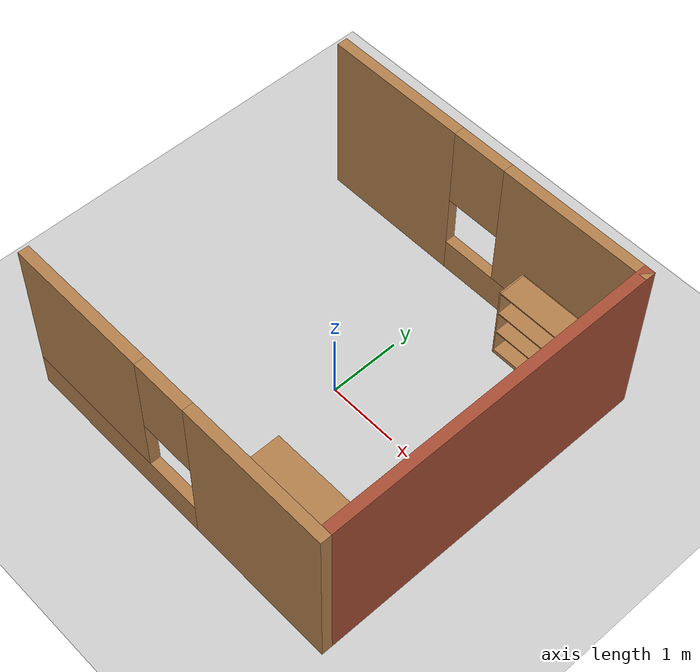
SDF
<sdf version="1.6">
 <world name="default">
  <light name="sun" type="directional">
   <pose>0 0 10 0 -0 0</pose>
   <diffuse>0.8 0.8 0.8 1</diffuse>
   <specular>0.2 0.2 0.2 1</specular>
   <attenuation>
    <range>1000</range>
    <constant>0.9</constant>
    <linear>0.01</linear>
    <quadratic>0.001</quadratic>
   </attenuation>
   <direction>-0.5 0.1 -0.9</direction>
  </light>
  <model name="ground_plane">
   <static>1</static>
   <link name="link">
    <collision name="collision">
     <geometry><plane><normal>0 0 1</normal><size>100 100</size></plane></geometry>
     <surface>
      <contact><collide_bitmask>65535</collide_bitmask></contact>
      <friction><ode><mu>100</mu><mu2>50</mu2></ode></friction>
     </surface>
    </collision>
    <visual name="visual">
     <cast_shadows>0</cast_shadows>
     <geometry><plane><normal>0 0 1</normal><size>100 100</size></plane></geometry>
     <material>
      <script><uri>file://media/materials/scripts/gazebo.material</uri><name>Gazebo/Grey</name></script>
     </material>
    </visual>
   </link>
  </model>
  <gravity>0 0 -9.8</gravity>
  <magnetic_field>6e-06 2.3e-05 -4.2e-05</magnetic_field>
  <atmosphere type="adiabatic"/>
  <physics name="default_physics" default="0" type="ode">
   <max_step_size>0.001</max_step_size>
   <real_time_factor>1</real_time_factor>
   <real_time_update_rate>1000</real_time_update_rate>
  </physics>
  <scene><ambient>0.4 0.4 0.4 1</ambient><background>0.7 0.7 0.7 1</background><shadows>1</shadows></scene>
  <spherical_coordinates>
   <surface_model>EARTH_WGS84</surface_model>
   <latitude_deg>0</latitude_deg>
   <longitude_deg>0</longitude_deg>
   <elevation>0</elevation>
   <heading_deg>0</heading_deg>
  </spherical_coordinates>
  <model name="house_1">
   <pose>0 0 0 0 -0 4e-06</pose>
   <link name="Wall_0">
    <pose>-0 2.425 0 0 -0 0</pose>
    <visual name="Wall_0_Visual_0">
     <pose>-1.48526 0 1.25 0 -0 0</pose>
     <geometry><box><size>2.02948 0.15 2.5</size></box></geometry>
     <material>
      <script><uri>file://media/materials/scripts/gazebo.material</uri><name>Gazebo/Wood</name></script>
      <ambient>1 1 1 1</ambient>
     </material>
     <meta><layer>0</layer></meta>
    </visual>
    <collision name="Wall_0_Collision_0">
     <geometry><box><size>2.02948 0.15 2.5</size></box></geometry>
     <pose>-1.48526 0 1.25 0 -0 0</pose>
    </collision>
    <visual name="Wall_0_Visual_1">
     <pose>1.01474 0 0.25 0 -0 0</pose>
     <geometry><box><size>2.97052 0.15 0.5</size></box></geometry>
     <material>
      <script><uri>file://media/materials/scripts/gazebo.material</uri><name>Gazebo/Wood</name></script>
      <ambient>1 1 1 1</ambient>
     </material>
     <meta><layer>0</layer></meta>
    </visual>
    <collision name="Wall_0_Collision_1">
     <geometry><box><size>2.97052 0.15 0.5</size></box></geometry>
     <pose>1.01474 0 0.25 0 -0 0</pose>
    </collision>
    <visual name="Wall_0_Visual_2">
     <pose>1.41474 0 1.5 0 -0 0</pose>
     <geometry><box><size>2.17053 0.15 2</size></box></geometry>
     <material>
      <script><uri>file://media/materials/scripts/gazebo.material</uri><name>Gazebo/Wood</name></script>
      <ambient>1 1 1 1</ambient>
     </material>
     <meta><layer>0</layer></meta>
    </visual>
    <collision name="Wall_0_Collision_2">
     <geometry><box><size>2.17053 0.15 2</size></box></geometry>
     <pose>1.41474 0 1.5 0 -0 0</pose>
    </collision>
    <visual name="Wall_0_Visual_3">
     <pose>-0.070525 0 1.9 0 -0 0</pose>
     <geometry><box><size>0.8 0.15 1.2</size></box></geometry>
     <material>
      <script><uri>file://media/materials/scripts/gazebo.material</uri><name>Gazebo/Wood</name></script>
      <ambient>1 1 1 1</ambient>
     </material>
     <meta><layer>0</layer></meta>
    </visual>
    <collision name="Wall_0_Collision_3">
     <geometry><box><size>0.8 0.15 1.2</size></box></geometry>
     <pose>-0.070525 0 1.9 0 -0 0</pose>
    </collision>
   </link>
   <link name="Wall_1">
    <collision name="Wall_1_Collision">
     <geometry><box><size>5 0.15 2.5</size></box></geometry>
     <pose>0 0 1.25 0 -0 0</pose>
    </collision>
    <visual name="Wall_1_Visual">
     <pose>0 0 1.25 0 -0 0</pose>
     <geometry><box><size>5 0.15 2.5</size></box></geometry>
     <material>
      <script><uri>file://media/materials/scripts/gazebo.material</uri><name>Gazebo/Bricks</name></script>
      <ambient>1 1 1 1</ambient>
     </material>
     <meta><layer>0</layer></meta>
    </visual>
    <pose>2.425 -0 0 0 -0 -1.5708</pose>
   </link>
   <link name="Wall_2">
    <pose>-0 -2.425 0 0 -0 3.14159</pose>
    <visual name="Wall_2_Visual_0">
     <pose>-1.43223 0 1.25 0 -0 0</pose>
     <geometry><box><size>2.13555 0.15 2.5</size></box></geometry>
     <material>
      <script><uri>file://media/materials/scripts/gazebo.material</uri><name>Gazebo/Wood</name></script>
      <ambient>1 1 1 1</ambient>
     </material>
     <meta><layer>0</layer></meta>
    </visual>
    <collision name="Wall_2_Collision_0">
     <geometry><box><size>2.13555 0.15 2.5</size></box></geometry>
     <pose>-1.43223 0 1.25 0 -0 0</pose>
    </collision>
    <visual name="Wall_2_Visual_1">
     <pose>1.06777 0 0.25 0 -0 0</pose>
     <geometry><box><size>2.86445 0.15 0.5</size></box></geometry>
     <material>
      <script><uri>file://media/materials/scripts/gazebo.material</uri><name>Gazebo/Wood</name></script>
      <ambient>1 1 1 1</ambient>
     </material>
     <meta><layer>0</layer></meta>
    </visual>
    <collision name="Wall_2_Collision_1">
     <geometry><box><size>2.86445 0.15 0.5</size></box></geometry>
     <pose>1.06777 0 0.25 0 -0 0</pose>
    </collision>
    <visual name="Wall_2_Visual_2">
     <pose>1.46777 0 1.5 0 -0 0</pose>
     <geometry><box><size>2.06446 0.15 2</size></box></geometry>
     <material>
      <script><uri>file://media/materials/scripts/gazebo.material</uri><name>Gazebo/Wood</name></script>
      <ambient>1 1 1 1</ambient>
     </material>
     <meta><layer>0</layer></meta>
    </visual>
    <collision name="Wall_2_Collision_2">
     <geometry><box><size>2.06446 0.15 2</size></box></geometry>
     <pose>1.46777 0 1.5 0 -0 0</pose>
    </collision>
    <visual name="Wall_2_Visual_3">
     <pose>0.035545 0 1.9 0 -0 0</pose>
     <geometry><box><size>0.8 0.15 1.2</size></box></geometry>
     <material>
      <script><uri>file://media/materials/scripts/gazebo.material</uri><name>Gazebo/Wood</name></script>
      <ambient>1 1 1 1</ambient>
     </material>
     <meta><layer>0</layer></meta>
    </visual>
    <collision name="Wall_2_Collision_3">
     <geometry><box><size>0.8 0.15 1.2</size></box></geometry>
     <pose>0.035545 0 1.9 0 -0 0</pose>
    </collision>
   </link>
   <static>1</static>
  </model>
  <model name="table">
   <static>1</static>
   <link name="link">
    <collision name="surface">
     <pose>0 0 1 0 -0 0</pose>
     <geometry><box><size>1.5 0.8 0.03</size></box></geometry>
     <surface><friction><ode><mu>0.6</mu><mu2>0.6</mu2></ode></friction></surface>
    </collision>
    <visual name="visual1">
     <pose>0 0 1 0 -0 0</pose>
     <geometry><box><size>1.5 0.8 0.03</size></box></geometry>
     <material>
      <script><uri>file://media/materials/scripts/gazebo.material</uri><name>Gazebo/Wood</name></script>
     </material>
    </visual>
    <collision name="front_left_leg">
     <pose>0.68 0.38 0.5 0 -0 0</pose>
     <geometry><cylinder><radius>0.02</radius><length>1</length></cylinder></geometry>
    </collision>
    <visual name="front_left_leg">
     <pose>0.68 0.38 0.5 0 -0 0</pose>
     <geometry><cylinder><radius>0.02</radius><length>1</length></cylinder></geometry>
     <material>
      <script><uri>file://media/materials/scripts/gazebo.material</uri><name>Gazebo/Grey</name></script>
     </material>
    </visual>
    <collision name="front_right_leg">
     <pose>0.68 -0.38 0.5 0 -0 0</pose>
     <geometry><cylinder><radius>0.02</radius><length>1</length></cylinder></geometry>
    </collision>
    <visual name="front_right_leg">
     <pose>0.68 -0.38 0.5 0 -0 0</pose>
     <geometry><cylinder><radius>0.02</radius><length>1</length></cylinder></geometry>
     <material>
      <script><uri>file://media/materials/scripts/gazebo.material</uri><name>Gazebo/Grey</name></script>
     </material>
    </visual>
    <collision name="back_right_leg">
     <pose>-0.68 -0.38 0.5 0 -0 0</pose>
     <geometry><cylinder><radius>0.02</radius><length>1</length></cylinder></geometry>
    </collision>
    <visual name="back_right_leg">
     <pose>-0.68 -0.38 0.5 0 -0 0</pose>
     <geometry><cylinder><radius>0.02</radius><length>1</length></cylinder></geometry>
     <material>
      <script><uri>file://media/materials/scripts/gazebo.material</uri><name>Gazebo/Grey</name></script>
     </material>
    </visual>
    <collision name="back_left_leg">
     <pose>-0.68 0.38 0.5 0 -0 0</pose>
     <geometry><cylinder><radius>0.02</radius><length>1</length></cylinder></geometry>
    </collision>
    <visual name="back_left_leg">
     <pose>-0.68 0.38 0.5 0 -0 0</pose>
     <geometry><cylinder><radius>0.02</radius><length>1</length></cylinder></geometry>
     <material>
      <script><uri>file://media/materials/scripts/gazebo.material</uri><name>Gazebo/Grey</name></script>
     </material>
    </visual>
   </link>
   <pose>1.28462 -1.7606 0 0 -0 2e-06</pose>
  </model>
  <model name="bookshelf">
   <static>1</static>
   <link name="bookshelf::link">
    <inertial><mass>1</mass></inertial>
    <collision name="back">
     <pose>0 0.005 0.6 0 -0 0</pose>
     <geometry><box><size>0.9 0.01 1.2</size></box></geometry>
    </collision>
    <visual name="visual1">
     <pose>0 0.005 0.6 0 -0 0</pose>
     <geometry><box><size>0.9 0.01 1.2</size></box></geometry>
     <material>
      <script><uri>file://media/materials/scripts/gazebo.material</uri><name>Gazebo/Wood</name></script>
     </material>
    </visual>
    <collision name="left_side">
     <pose>0.45 -0.195 0.6 0 -0 0</pose>
     <geometry><box><size>0.02 0.4 1.2</size></box></geometry>
    </collision>
    <visual name="visual2">
     <pose>0.45 -0.195 0.6 0 -0 0</pose>
     <geometry><box><size>0.02 0.4 1.2</size></box></geometry>
     <material>
      <script><uri>file://media/materials/scripts/gazebo.material</uri><name>Gazebo/Wood</name></script>
     </material>
    </visual>
    <collision name="right_side">
     <pose>-0.45 -0.195 0.6 0 -0 0</pose>
     <geometry><box><size>0.02 0.4 1.2</size></box></geometry>
    </collision>
    <visual name="visual3">
     <pose>-0.45 -0.195 0.6 0 -0 0</pose>
     <geometry><box><size>0.02 0.4 1.2</size></box></geometry>
     <material>
      <script><uri>file://media/materials/scripts/gazebo.material</uri><name>Gazebo/Wood</name></script>
     </material>
    </visual>
    <collision name="bottom">
     <pose>0 -0.195 0.03 0 -0 0</pose>
     <geometry><box><size>0.88 0.4 0.06</size></box></geometry>
    </collision>
    <visual name="visual4">
     <pose>0 -0.195 0.03 0 -0 0</pose>
     <geometry><box><size>0.88 0.4 0.06</size></box></geometry>
     <material>
      <script><uri>file://media/materials/scripts/gazebo.material</uri><name>Gazebo/Wood</name></script>
     </material>
    </visual>
    <collision name="top">
     <pose>0 -0.195 1.19 0 -0 0</pose>
     <geometry><box><size>0.88 0.4 0.02</size></box></geometry>
    </collision>
    <visual name="visual5">
     <pose>0 -0.195 1.19 0 -0 0</pose>
     <geometry><box><size>0.88 0.4 0.02</size></box></geometry>
     <material>
      <script><uri>file://media/materials/scripts/gazebo.material</uri><name>Gazebo/Wood</name></script>
     </material>
    </visual>
    <collision name="low_shelf">
     <pose>0 -0.195 0.43 0 -0 0</pose>
     <geometry><box><size>0.88 0.4 0.02</size></box></geometry>
    </collision>
    <visual name="visual6">
     <pose>0 -0.195 0.43 0 -0 0</pose>
     <geometry><box><size>0.88 0.4 0.02</size></box></geometry>
     <material>
      <script><uri>file://media/materials/scripts/gazebo.material</uri><name>Gazebo/Wood</name></script>
     </material>
    </visual>
    <collision name="high_shelf">
     <pose>0 -0.195 0.8 0 -0 0</pose>
     <geometry><box><size>0.88 0.4 0.02</size></box></geometry>
    </collision>
    <visual name="visual7">
     <pose>0 -0.195 0.8 0 -0 0</pose>
     <geometry><box><size>0.88 0.4 0.02</size></box></geometry>
     <material>
      <script><uri>file://media/materials/scripts/gazebo.material</uri><name>Gazebo/Wood</name></script>
     </material>
    </visual>
   </link>
   <pose>1.35982 2.22982 0 0 -0 4e-06</pose>
  </model>
 </world>
</sdf>
